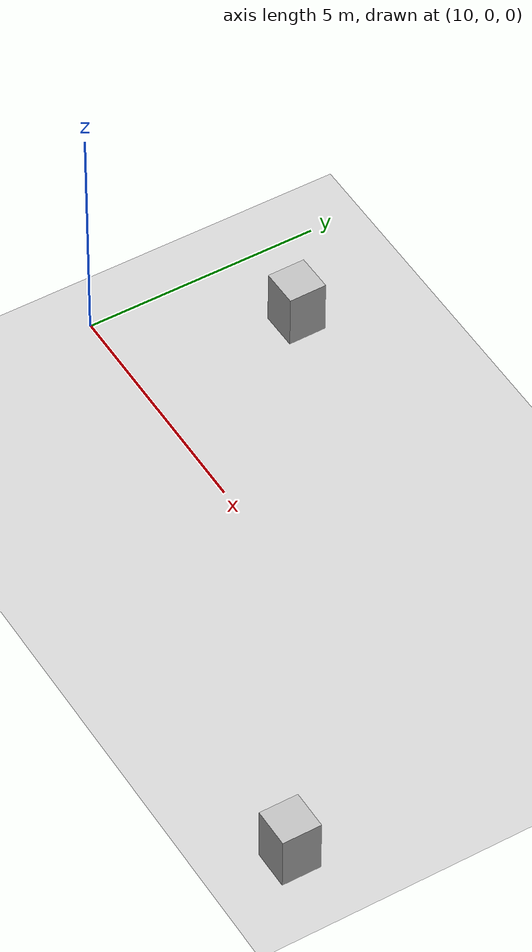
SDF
<?xml version="1.0"?>
<sdf version="1.6">
  <world name="v2-04g-r6-i3-compile-support-cruise-s5154">
    <gravity>0 0 -9.81</gravity>
    <physics name="v2_deterministic" type="ode">
      <max_step_size>0.002</max_step_size>
      <real_time_update_rate>500</real_time_update_rate>
    </physics>
    <include>
      <uri>model://sun</uri>
    </include>
    <include>
      <uri>model://ground_plane</uri>
    </include>
    <model name="cruise-left">
      <static>true</static>
      <pose>11.975538612 3.447624466 0.600000000 0 0 0.009712939</pose>
      <link name="link">
        <collision name="collision">
          <geometry>
            <box>
              <size>0.800000 0.800000 1.200000</size>
            </box>
          </geometry>
        </collision>
        <visual name="visual">
          <geometry>
            <box>
              <size>0.800000 0.800000 1.200000</size>
            </box>
          </geometry>
        </visual>
      </link>
    </model>
    <model name="cruise-right">
      <static>true</static>
      <pose>23.035158739 -3.462086428 0.600000000 0 0 -0.000801064</pose>
      <link name="link">
        <collision name="collision">
          <geometry>
            <box>
              <size>0.800000 0.800000 1.200000</size>
            </box>
          </geometry>
        </collision>
        <visual name="visual">
          <geometry>
            <box>
              <size>0.800000 0.800000 1.200000</size>
            </box>
          </geometry>
        </visual>
      </link>
    </model>
  </world>
</sdf>
